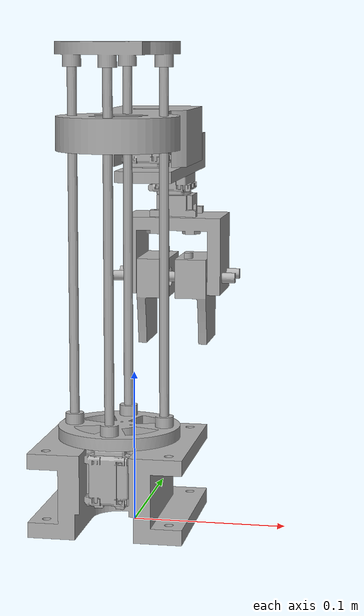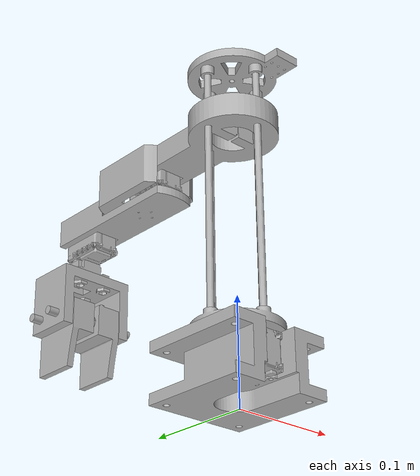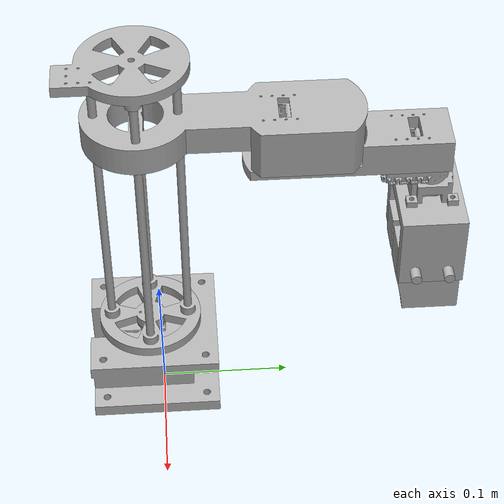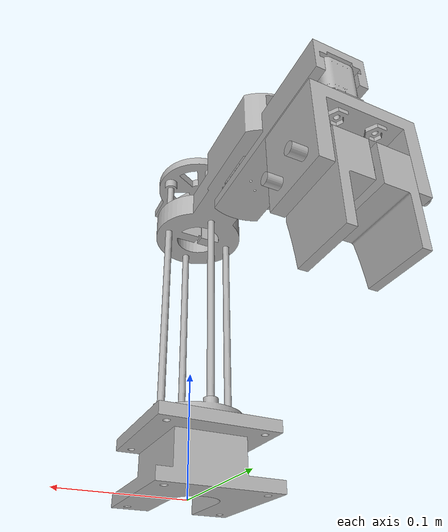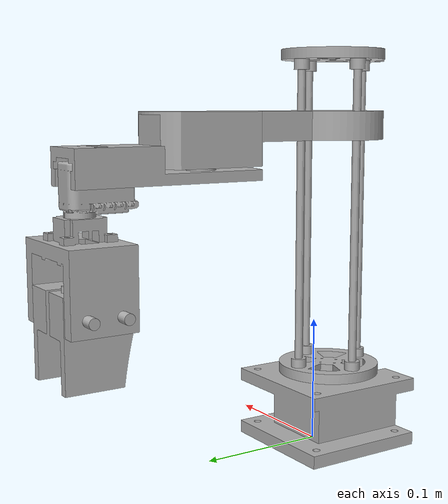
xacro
<?xml version="1.0" ?>
<robot name="final" xmlns:xacro="http://www.ros.org/wiki/xacro">

<xacro:include filename="$(find final_description)/urdf/materials.xacro" />
<xacro:include filename="$(find final_description)/urdf/final.trans" />
<xacro:include filename="$(find final_description)/urdf/final.gazebo" />

<link name="world"/>

<joint name="fixed" type="fixed">
  <parent link="world"/>
  <child link="base_link"/>
</joint>

<link name="base_link">
  <inertial>
    <origin rpy="0 0 0" xyz="-0.008596656384613339 -0.004296468924097445 0.029416258776475086"/>
    <mass value="0.25735954808885964"/>
    <inertia ixx="0.000281" ixy="-0.0" ixz="-0.0" iyy="0.000294" iyz="2e-06" izz="0.000394"/>
  </inertial>
  <visual>
    <origin rpy="0 0 0" xyz="0 0 0"/>
    <geometry>
      <mesh filename="package://final_description/meshes/base_link.stl" scale="0.001 0.001 0.001"/>
    </geometry>
    <material name="silver"/>
  </visual>
  <collision>
    <origin rpy="0 0 0" xyz="0 0 0"/>
    <geometry>
      <mesh filename="package://final_description/meshes/base_link.stl" scale="0.001 0.001 0.001"/>
    </geometry>
  </collision>
</link>

<link name="component_1_1">
  <inertial>
    <origin rpy="0 0 0" xyz="-0.013530746929777494 -0.006262761188335131 -0.0149411480963735"/>
    <mass value="0.042440875020205084"/>
    <inertia ixx="1.2e-05" ixy="-0.0" ixz="0.0" iyy="7e-06" iyz="-0.0" izz="1e-05"/>
  </inertial>
  <visual>
    <origin rpy="0 0 0" xyz="-0.004903 0.014859 -0.053014"/>
    <geometry>
      <mesh filename="package://final_description/meshes/component_1_1.stl" scale="0.001 0.001 0.001"/>
    </geometry>
    <material name="silver"/>
  </visual>
  <collision>
    <origin rpy="0 0 0" xyz="-0.004903 0.014859 -0.053014"/>
    <geometry>
      <mesh filename="package://final_description/meshes/component_1_1.stl" scale="0.001 0.001 0.001"/>
    </geometry>
  </collision>
</link>

<link name="component_2_1">
  <inertial>
    <origin rpy="0 0 0" xyz="3.436152000782511e-07 -4.5517502790526354e-07 0.004514017078818551"/>
    <mass value="0.03072893960969977"/>
    <inertia ixx="1.4e-05" ixy="0.0" ixz="0.0" iyy="1.4e-05" iyz="0.0" izz="2.8e-05"/>
  </inertial>
  <visual>
    <origin rpy="0 0 0" xyz="0.008597 0.008359 -0.058014"/>
    <geometry>
      <mesh filename="package://final_description/meshes/component_2_1.stl" scale="0.001 0.001 0.001"/>
    </geometry>
    <material name="silver"/>
  </visual>
  <collision>
    <origin rpy="0 0 0" xyz="0.008597 0.008359 -0.058014"/>
    <geometry>
      <mesh filename="package://final_description/meshes/component_2_1.stl" scale="0.001 0.001 0.001"/>
    </geometry>
  </collision>
</link>

<link name="component_3_1">
  <inertial>
    <origin rpy="0 0 0" xyz="3.4361538387740753e-07 -4.551750279017941e-07 0.12500028301299004"/>
    <mass value="0.0077931132763111805"/>
    <inertia ixx="4.1e-05" ixy="0.0" ixz="0.0" iyy="4.1e-05" iyz="0.0" izz="0.0"/>
  </inertial>
  <visual>
    <origin rpy="0 0 0" xyz="0.008597 -0.021641 -0.061014"/>
    <geometry>
      <mesh filename="package://final_description/meshes/component_3_1.stl" scale="0.001 0.001 0.001"/>
    </geometry>
    <material name="silver"/>
  </visual>
  <collision>
    <origin rpy="0 0 0" xyz="0.008597 -0.021641 -0.061014"/>
    <geometry>
      <mesh filename="package://final_description/meshes/component_3_1.stl" scale="0.001 0.001 0.001"/>
    </geometry>
  </collision>
</link>

<link name="component_4_1">
  <inertial>
    <origin rpy="0 0 0" xyz="3.4361538388608115e-07 -4.5517502790526354e-07 0.12500028301299004"/>
    <mass value="0.0077931132763111805"/>
    <inertia ixx="4.1e-05" ixy="-0.0" ixz="0.0" iyy="4.1e-05" iyz="0.0" izz="0.0"/>
  </inertial>
  <visual>
    <origin rpy="0 0 0" xyz="-0.021403 0.008359 -0.061014"/>
    <geometry>
      <mesh filename="package://final_description/meshes/component_4_1.stl" scale="0.001 0.001 0.001"/>
    </geometry>
    <material name="silver"/>
  </visual>
  <collision>
    <origin rpy="0 0 0" xyz="-0.021403 0.008359 -0.061014"/>
    <geometry>
      <mesh filename="package://final_description/meshes/component_4_1.stl" scale="0.001 0.001 0.001"/>
    </geometry>
  </collision>
</link>

<link name="component_5_1">
  <inertial>
    <origin rpy="0 0 0" xyz="3.436153838756728e-07 -4.5517502790526354e-07 0.12500028301299004"/>
    <mass value="0.0077931132763111805"/>
    <inertia ixx="4.1e-05" ixy="0.0" ixz="0.0" iyy="4.1e-05" iyz="0.0" izz="0.0"/>
  </inertial>
  <visual>
    <origin rpy="0 0 0" xyz="0.038597 0.008359 -0.061014"/>
    <geometry>
      <mesh filename="package://final_description/meshes/component_5_1.stl" scale="0.001 0.001 0.001"/>
    </geometry>
    <material name="silver"/>
  </visual>
  <collision>
    <origin rpy="0 0 0" xyz="0.038597 0.008359 -0.061014"/>
    <geometry>
      <mesh filename="package://final_description/meshes/component_5_1.stl" scale="0.001 0.001 0.001"/>
    </geometry>
  </collision>
</link>

<link name="component_6_1">
  <inertial>
    <origin rpy="0 0 0" xyz="3.4361538387740753e-07 -4.5517502791220243e-07 0.12500028301299004"/>
    <mass value="0.0077931132763111805"/>
    <inertia ixx="4.1e-05" ixy="0.0" ixz="0.0" iyy="4.1e-05" iyz="0.0" izz="0.0"/>
  </inertial>
  <visual>
    <origin rpy="0 0 0" xyz="0.008597 0.038359 -0.061014"/>
    <geometry>
      <mesh filename="package://final_description/meshes/component_6_1.stl" scale="0.001 0.001 0.001"/>
    </geometry>
    <material name="silver"/>
  </visual>
  <collision>
    <origin rpy="0 0 0" xyz="0.008597 0.038359 -0.061014"/>
    <geometry>
      <mesh filename="package://final_description/meshes/component_6_1.stl" scale="0.001 0.001 0.001"/>
    </geometry>
  </collision>
</link>

<link name="component_7_1">
  <inertial>
    <origin rpy="0 0 0" xyz="0.001500052011732464 -0.03434594362391539 -0.0005174594332921778"/>
    <mass value="0.037463015023278555"/>
    <inertia ixx="2.2e-05" ixy="2e-06" ixz="-0.0" iyy="1.6e-05" iyz="0.0" izz="3.8e-05"/>
  </inertial>
  <visual>
    <origin rpy="0 0 0" xyz="0.008597 -0.021641 -0.311014"/>
    <geometry>
      <mesh filename="package://final_description/meshes/component_7_1.stl" scale="0.001 0.001 0.001"/>
    </geometry>
    <material name="silver"/>
  </visual>
  <collision>
    <origin rpy="0 0 0" xyz="0.008597 -0.021641 -0.311014"/>
    <geometry>
      <mesh filename="package://final_description/meshes/component_7_1.stl" scale="0.001 0.001 0.001"/>
    </geometry>
  </collision>
</link>

<link name="component_8_1">
  <inertial>
    <origin rpy="0 0 0" xyz="0.008596343615383886 -0.0970629137037351 -0.09477566583697278"/>
    <mass value="0.2103795686670186"/>
    <inertia ixx="0.000733" ixy="0.0" ixz="0.0" iyy="0.000106" iyz="3.3e-05" izz="0.000803"/>
  </inertial>
  <visual>
    <origin rpy="0 0 0" xyz="0.017193 -0.147655 -0.349374"/>
    <geometry>
      <mesh filename="package://final_description/meshes/component_8_1.stl" scale="0.001 0.001 0.001"/>
    </geometry>
    <material name="silver"/>
  </visual>
  <collision>
    <origin rpy="0 0 0" xyz="0.017193 -0.147655 -0.349374"/>
    <geometry>
      <mesh filename="package://final_description/meshes/component_8_1.stl" scale="0.001 0.001 0.001"/>
    </geometry>
  </collision>
</link>

<link name="component_9_1">
  <inertial>
    <origin rpy="0 0 0" xyz="0.013531434160545258 0.01773723881166482 -0.017058285877646517"/>
    <mass value="0.042440875020205084"/>
    <inertia ixx="1.2e-05" ixy="0.0" ixz="0.0" iyy="7e-06" iyz="0.0" izz="1e-05"/>
  </inertial>
  <visual>
    <origin rpy="0 0 0" xyz="0.022097 -0.081141 -0.263014"/>
    <geometry>
      <mesh filename="package://final_description/meshes/component_9_1.stl" scale="0.001 0.001 0.001"/>
    </geometry>
    <material name="silver"/>
  </visual>
  <collision>
    <origin rpy="0 0 0" xyz="0.022097 -0.081141 -0.263014"/>
    <geometry>
      <mesh filename="package://final_description/meshes/component_9_1.stl" scale="0.001 0.001 0.001"/>
    </geometry>
  </collision>
</link>

<link name="component_10_1">
  <inertial>
    <origin rpy="0 0 0" xyz="3.4361538631642874e-07 0.04153571645966893 0.0027653194404973214"/>
    <mass value="0.0675808179349682"/>
    <inertia ixx="0.000119" ixy="-0.0" ixz="-0.0" iyy="1.6e-05" iyz="-1.4e-05" izz="0.000125"/>
  </inertial>
  <visual>
    <origin rpy="0 0 0" xyz="0.008597 -0.111641 -0.226014"/>
    <geometry>
      <mesh filename="package://final_description/meshes/component_10_1.stl" scale="0.001 0.001 0.001"/>
    </geometry>
    <material name="silver"/>
  </visual>
  <collision>
    <origin rpy="0 0 0" xyz="0.008597 -0.111641 -0.226014"/>
    <geometry>
      <mesh filename="package://final_description/meshes/component_10_1.stl" scale="0.001 0.001 0.001"/>
    </geometry>
  </collision>
</link>

<link name="component_11_1">
  <inertial>
    <origin rpy="0 0 0" xyz="0.013531434160545227 0.017737238811664835 -0.017058285877646517"/>
    <mass value="0.042440875020205084"/>
    <inertia ixx="1.2e-05" ixy="0.0" ixz="0.0" iyy="7e-06" iyz="0.0" izz="1e-05"/>
  </inertial>
  <visual>
    <origin rpy="0 0 0" xyz="0.022097 -0.176141 -0.235014"/>
    <geometry>
      <mesh filename="package://final_description/meshes/component_11_1.stl" scale="0.001 0.001 0.001"/>
    </geometry>
    <material name="silver"/>
  </visual>
  <collision>
    <origin rpy="0 0 0" xyz="0.022097 -0.176141 -0.235014"/>
    <geometry>
      <mesh filename="package://final_description/meshes/component_11_1.stl" scale="0.001 0.001 0.001"/>
    </geometry>
  </collision>
</link>

<link name="component_12_1">
  <inertial>
    <origin rpy="0 0 0" xyz="3.436153912135531e-07 -4.5517502791914133e-07 -0.007159059313736643"/>
    <mass value="0.0097375929550333"/>
    <inertia ixx="1e-06" ixy="0.0" ixz="0.0" iyy="1e-06" iyz="-0.0" izz="2e-06"/>
  </inertial>
  <visual>
    <origin rpy="0 0 0" xyz="0.008597 -0.206641 -0.198014"/>
    <geometry>
      <mesh filename="package://final_description/meshes/component_12_1.stl" scale="0.001 0.001 0.001"/>
    </geometry>
    <material name="silver"/>
  </visual>
  <collision>
    <origin rpy="0 0 0" xyz="0.008597 -0.206641 -0.198014"/>
    <geometry>
      <mesh filename="package://final_description/meshes/component_12_1.stl" scale="0.001 0.001 0.001"/>
    </geometry>
  </collision>
</link>

<link name="component_13_1">
  <inertial>
    <origin rpy="0 0 0" xyz="0.013928761579898922 -0.015350627307566367 -0.021635189219169654"/>
    <mass value="0.08047087028496779"/>
    <inertia ixx="4.3e-05" ixy="0.0" ixz="-0.0" iyy="9.2e-05" iyz="0.0" izz="8.3e-05"/>
  </inertial>
  <visual>
    <origin rpy="0 0 0" xyz="0.022347 -0.221991 -0.182014"/>
    <geometry>
      <mesh filename="package://final_description/meshes/component_13_1.stl" scale="0.001 0.001 0.001"/>
    </geometry>
    <material name="silver"/>
  </visual>
  <collision>
    <origin rpy="0 0 0" xyz="0.022347 -0.221991 -0.182014"/>
    <geometry>
      <mesh filename="package://final_description/meshes/component_13_1.stl" scale="0.001 0.001 0.001"/>
    </geometry>
  </collision>
</link>

<link name="component_14_1">
  <inertial>
    <origin rpy="0 0 0" xyz="0.08501434361538393 -0.2066404551750281 0.03609628301299023"/>
    <mass value="0.004775220833456485"/>
    <inertia ixx="0.0" ixy="-0.0" ixz="0.0" iyy="4e-06" iyz="0.0" izz="4e-06"/>
  </inertial>
  <visual>
    <origin rpy="0 0 0" xyz="0.093611 -0.400781 -0.098918"/>
    <geometry>
      <mesh filename="package://final_description/meshes/component_14_1.stl" scale="0.001 0.001 0.001"/>
    </geometry>
    <material name="silver"/>
  </visual>
  <collision>
    <origin rpy="0 0 0" xyz="0.093611 -0.400781 -0.098918"/>
    <geometry>
      <mesh filename="package://final_description/meshes/component_14_1.stl" scale="0.001 0.001 0.001"/>
    </geometry>
  </collision>
</link>

<link name="component_15_1">
  <inertial>
    <origin rpy="0 0 0" xyz="0.08501434361538386 -0.20664045517502813 0.03609628301299023"/>
    <mass value="0.004775220833456485"/>
    <inertia ixx="0.0" ixy="-0.0" ixz="0.0" iyy="4e-06" iyz="0.0" izz="4e-06"/>
  </inertial>
  <visual>
    <origin rpy="0 0 0" xyz="0.093611 -0.425781 -0.098918"/>
    <geometry>
      <mesh filename="package://final_description/meshes/component_15_1.stl" scale="0.001 0.001 0.001"/>
    </geometry>
    <material name="silver"/>
  </visual>
  <collision>
    <origin rpy="0 0 0" xyz="0.093611 -0.425781 -0.098918"/>
    <geometry>
      <mesh filename="package://final_description/meshes/component_15_1.stl" scale="0.001 0.001 0.001"/>
    </geometry>
  </collision>
</link>

<link name="component_16_1">
  <inertial>
    <origin rpy="0 0 0" xyz="0.11754967356483993 -0.23103025615169182 -0.0006027273872318828"/>
    <mass value="0.038685662168165255"/>
    <inertia ixx="2e-05" ixy="0.0" ixz="-2e-06" iyy="1.4e-05" iyz="1e-06" izz="1e-05"/>
  </inertial>
  <visual>
    <origin rpy="0 0 0" xyz="0.143611 -0.438281 -0.126418"/>
    <geometry>
      <mesh filename="package://final_description/meshes/component_16_1.stl" scale="0.001 0.001 0.001"/>
    </geometry>
    <material name="silver"/>
  </visual>
  <collision>
    <origin rpy="0 0 0" xyz="0.143611 -0.438281 -0.126418"/>
    <geometry>
      <mesh filename="package://final_description/meshes/component_16_1.stl" scale="0.001 0.001 0.001"/>
    </geometry>
  </collision>
</link>

<link name="component_17_1">
  <inertial>
    <origin rpy="0 0 0" xyz="0.15197898922951777 -0.18118342054242706 -0.04810259334233247"/>
    <mass value="0.038685834698620296"/>
    <inertia ixx="2e-05" ixy="-0.0" ixz="2e-06" iyy="1.4e-05" iyz="1e-06" izz="1e-05"/>
  </inertial>
  <visual>
    <origin rpy="0 0 0" xyz="0.143611 -0.388281 -0.173918"/>
    <geometry>
      <mesh filename="package://final_description/meshes/component_17_1.stl" scale="0.001 0.001 0.001"/>
    </geometry>
    <material name="silver"/>
  </visual>
  <collision>
    <origin rpy="0 0 0" xyz="0.143611 -0.388281 -0.173918"/>
    <geometry>
      <mesh filename="package://final_description/meshes/component_17_1.stl" scale="0.001 0.001 0.001"/>
    </geometry>
  </collision>
</link>

<joint name="rigid1" type="fixed">
  <origin rpy="0 0 0" xyz="0.004903 -0.014859 0.053014"/>
  <parent link="base_link"/>
  <child link="component_1_1"/>
</joint>

<joint name="rev1" type="revolute">
  <origin rpy="0 0 0" xyz="-0.0135 0.0065 0.005"/>
  <parent link="component_1_1"/>
  <child link="component_2_1"/>
  <axis xyz="-0.0 0.0 1.0"/>
  <limit effort="100" lower="-3.145" upper="3.145" velocity="100"/>
</joint>

<joint name="rigid2" type="fixed">
  <origin rpy="0 0 0" xyz="0.0 0.03 0.003"/>
  <parent link="component_2_1"/>
  <child link="component_3_1"/>
</joint>

<joint name="rigid3" type="fixed">
  <origin rpy="0 0 0" xyz="0.03 0.0 0.003"/>
  <parent link="component_2_1"/>
  <child link="component_4_1"/>
</joint>

<joint name="rigid4" type="fixed">
  <origin rpy="0 0 0" xyz="-0.03 0.0 0.003"/>
  <parent link="component_2_1"/>
  <child link="component_5_1"/>
</joint>

<joint name="rigid5" type="fixed">
  <origin rpy="0 0 0" xyz="0.0 -0.03 0.003"/>
  <parent link="component_2_1"/>
  <child link="component_6_1"/>
</joint>

<joint name="rigid6" type="fixed">
  <origin rpy="0 0 0" xyz="0.0 0.0 0.25"/>
  <parent link="component_3_1"/>
  <child link="component_7_1"/>
</joint>

<joint name="slider1" type="prismatic">
  <origin rpy="0 0 0" xyz="-0.008596 0.186014 0.28836"/>
  <parent link="component_6_1"/>
  <child link="component_8_1"/>
  <axis xyz="0.0 -0.0 -1.0"/>
  <limit effort="100" lower="-0.10" upper="0.1" velocity="100"/>
</joint>

<joint name="rigid7" type="fixed">
  <origin rpy="0 0 0" xyz="-0.004904 -0.066514 -0.08636"/>
  <parent link="component_8_1"/>
  <child link="component_9_1"/>
</joint>

<joint name="rev2" type="revolute">
  <origin rpy="0 0 0" xyz="0.0135 0.0305 -0.037"/>
  <parent link="component_9_1"/>
  <child link="component_10_1"/>
  <axis xyz="0.0 -0.0 -1.0"/>
  <limit effort="100" lower="-1.41" upper="1.41" velocity="100"/>
</joint>

<joint name="rigid8" type="fixed">
  <origin rpy="0 0 0" xyz="-0.0135 0.0645 0.009"/>
  <parent link="component_10_1"/>
  <child link="component_11_1"/>
</joint>

<joint name="rev3" type="revolute">
  <origin rpy="0 0 0" xyz="0.0135 0.0305 -0.037"/>
  <parent link="component_11_1"/>
  <child link="component_12_1"/>
  <axis xyz="0.0 -0.0 -1.0"/>
  <limit effort="100" lower="-3.14" upper="3.14" velocity="100"/>
</joint>

<joint name="rigid9" type="fixed">
  <origin rpy="0 0 0" xyz="-0.01375 0.01535 -0.016"/>
  <parent link="component_12_1"/>
  <child link="component_13_1"/>
</joint>

<joint name="rigid10" type="fixed">
  <origin rpy="0 0 0" xyz="-0.071264 0.17879 -0.083096"/>
  <parent link="component_13_1"/>
  <child link="component_14_1"/>
</joint>

<joint name="rigid11" type="fixed">
  <origin rpy="0 0 0" xyz="-0.071264 0.20379 -0.083096"/>
  <parent link="component_13_1"/>
  <child link="component_15_1"/>
</joint>

<joint name="slider2" type="prismatic">
  <origin rpy="0 0 0" xyz="-0.05 0.0125 0.0275"/>
  <parent link="component_15_1"/>
  <child link="component_16_1"/>
  <axis xyz="-1.0 -0.0 -0.0"/>
  <limit effort="100" lower="-0.01" upper="0.01" velocity="100"/>
</joint>

<joint name="slider3" type="prismatic">
  <origin rpy="0 0 0" xyz="-0.05 -0.0125 0.075"/>
  <parent link="component_14_1"/>
  <child link="component_17_1"/>
  <axis xyz="-1.0 -0.0 -0.0"/>
  <limit effort="100" lower="-0.01" upper="0.01" velocity="100"/>
</joint>

</robot>

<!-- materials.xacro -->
<robot name="project" xmlns:xacro="http://www.ros.org/wiki/xacro" >

<material name="silver">
  <color rgba="0.700 0.700 0.700 1.000"/>
</material>

</robot>

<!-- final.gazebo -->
<robot name="final" xmlns:xacro="http://www.ros.org/wiki/xacro" >

<xacro:property name="body_color" value="Gazebo/Silver" />

<gazebo>
  <plugin name="gazebo_ros_control" filename="libgazebo_ros_control.so">
    <robotNamespace>/final</robotNamespace>
  </plugin>
</gazebo>

<gazebo reference="base_link">
  <material>${body_color}</material>
  <mu1>0.2</mu1>
  <mu2>0.2</mu2>
  <selfCollide>true</selfCollide>
  <gravity>true</gravity>
</gazebo>

<gazebo reference="component_1_1">
  <material>${body_color}</material>
  <mu1>0.2</mu1>
  <mu2>0.2</mu2>
  <selfCollide>true</selfCollide>
</gazebo>

<gazebo reference="component_2_1">
  <material>${body_color}</material>
  <mu1>0.2</mu1>
  <mu2>0.2</mu2>
  <selfCollide>true</selfCollide>
</gazebo>

<gazebo reference="component_3_1">
  <material>${body_color}</material>
  <mu1>0.2</mu1>
  <mu2>0.2</mu2>
  <selfCollide>true</selfCollide>
</gazebo>

<gazebo reference="component_4_1">
  <material>${body_color}</material>
  <mu1>0.2</mu1>
  <mu2>0.2</mu2>
  <selfCollide>true</selfCollide>
</gazebo>

<gazebo reference="component_5_1">
  <material>${body_color}</material>
  <mu1>0.2</mu1>
  <mu2>0.2</mu2>
  <selfCollide>true</selfCollide>
</gazebo>

<gazebo reference="component_6_1">
  <material>${body_color}</material>
  <mu1>0.2</mu1>
  <mu2>0.2</mu2>
  <selfCollide>true</selfCollide>
</gazebo>

<gazebo reference="component_7_1">
  <material>${body_color}</material>
  <mu1>0.2</mu1>
  <mu2>0.2</mu2>
  <selfCollide>true</selfCollide>
</gazebo>

<gazebo reference="component_8_1">
  <material>${body_color}</material>
  <mu1>0.2</mu1>
  <mu2>0.2</mu2>
  <selfCollide>true</selfCollide>
</gazebo>

<gazebo reference="component_9_1">
  <material>${body_color}</material>
  <mu1>0.2</mu1>
  <mu2>0.2</mu2>
  <selfCollide>true</selfCollide>
</gazebo>

<gazebo reference="component_10_1">
  <material>${body_color}</material>
  <mu1>0.2</mu1>
  <mu2>0.2</mu2>
  <selfCollide>true</selfCollide>
</gazebo>

<gazebo reference="component_11_1">
  <material>${body_color}</material>
  <mu1>0.2</mu1>
  <mu2>0.2</mu2>
  <selfCollide>true</selfCollide>
</gazebo>

<gazebo reference="component_12_1">
  <material>${body_color}</material>
  <mu1>0.2</mu1>
  <mu2>0.2</mu2>
  <selfCollide>true</selfCollide>
</gazebo>

<gazebo reference="component_13_1">
  <material>${body_color}</material>
  <mu1>0.2</mu1>
  <mu2>0.2</mu2>
  <selfCollide>true</selfCollide>
</gazebo>

<gazebo reference="component_14_1">
  <material>${body_color}</material>
  <mu1>0.2</mu1>
  <mu2>0.2</mu2>
  <selfCollide>true</selfCollide>
</gazebo>

<gazebo reference="component_15_1">
  <material>${body_color}</material>
  <mu1>0.2</mu1>
  <mu2>0.2</mu2>
  <selfCollide>true</selfCollide>
</gazebo>

<gazebo reference="component_16_1">
  <material>${body_color}</material>
  <mu1>0.2</mu1>
  <mu2>0.2</mu2>
  <selfCollide>true</selfCollide>
</gazebo>

<gazebo reference="component_17_1">
  <material>${body_color}</material>
  <mu1>0.2</mu1>
  <mu2>0.2</mu2>
  <selfCollide>true</selfCollide>
</gazebo>

</robot>
